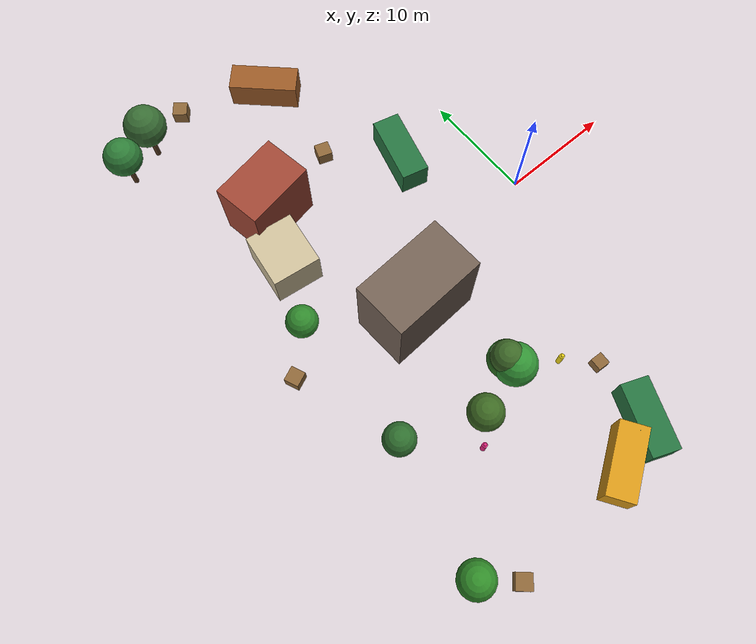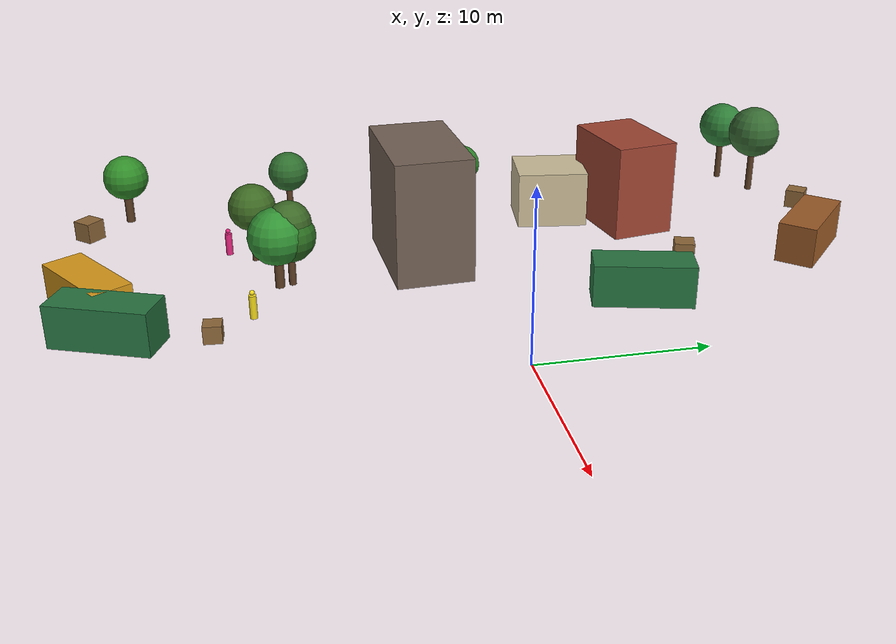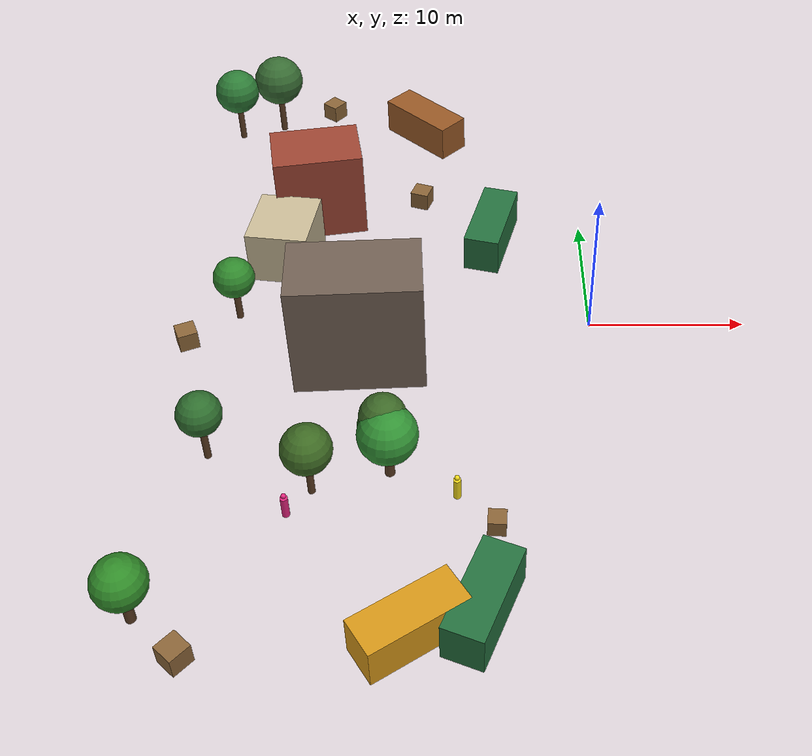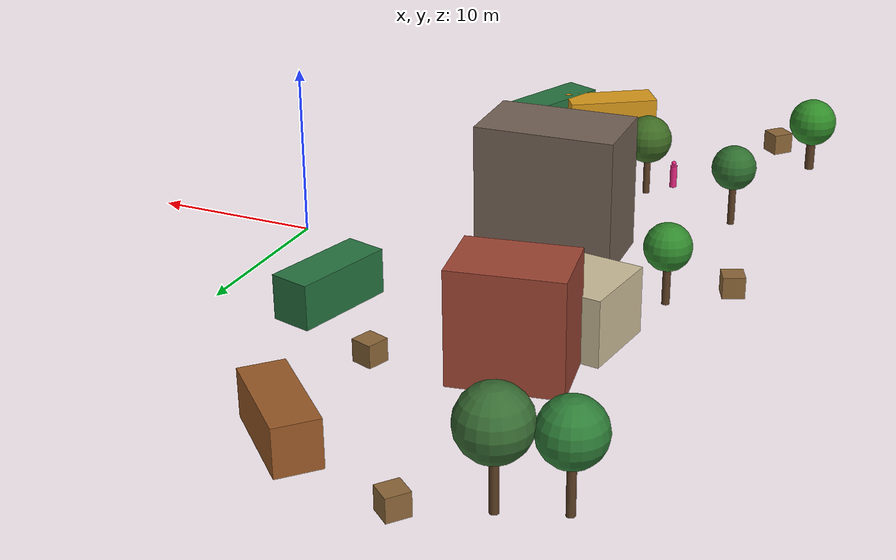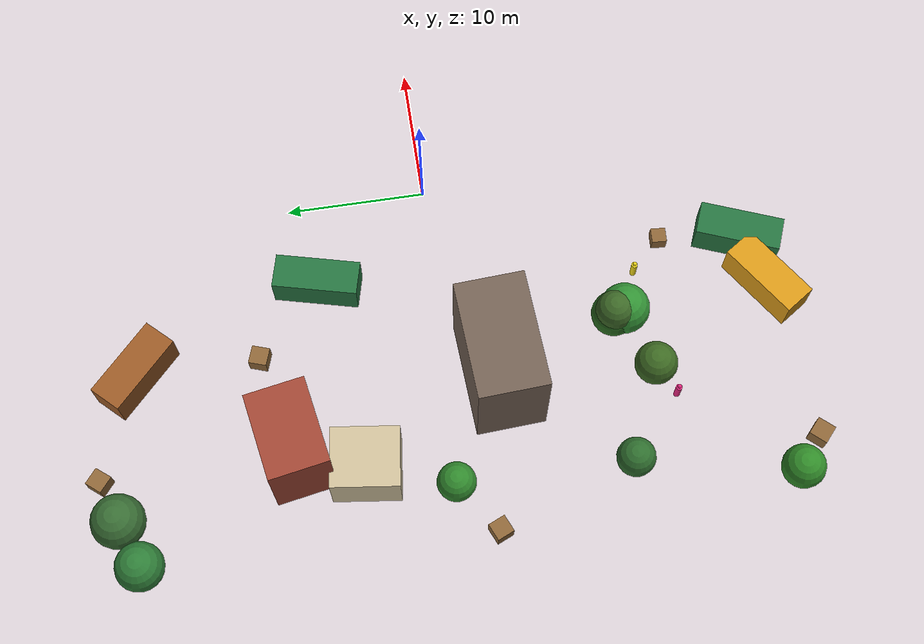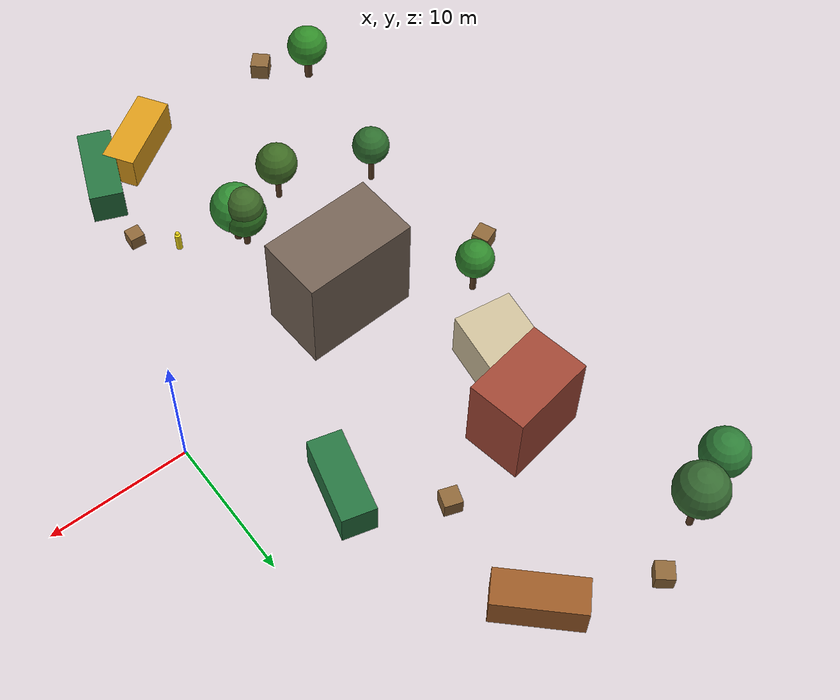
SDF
<sdf version="1.9">
 <world name="map_7">
  <model name="ground_plane">
   <static>true</static>
   <link name="link">
    <collision name="collision">
     <geometry><plane><normal>0 0 1</normal><size>1 1</size></plane></geometry>
    </collision>
   </link>
  </model>
  <model name="building_1">
   <static>true</static>
   <pose>-14.71 -3.30 3.95 0 0 0.053</pose>
   <link name="link">
    <collision name="collision"><geometry><box><size>8.19 4.88 7.89</size></box></geometry></collision>
    <visual name="visual">
     <geometry><box><size>8.19 4.88 7.89</size></box></geometry>
     <material>
      <diffuse>0.450 0.380 0.330 1</diffuse>
      <ambient>0.360 0.304 0.264 1</ambient>
      <specular>0.05 0.05 0.05 1</specular>
     </material>
    </visual>
   </link>
  </model>
  <model name="building_2">
   <static>true</static>
   <pose>-20.39 6.75 1.88 0 0 1.441</pose>
   <link name="link">
    <collision name="collision"><geometry><box><size>4.72 4.18 3.75</size></box></geometry></collision>
    <visual name="visual">
     <geometry><box><size>4.72 4.18 3.75</size></box></geometry>
     <material>
      <diffuse>0.800 0.740 0.600 1</diffuse>
      <ambient>0.640 0.592 0.480 1</ambient>
      <specular>0.05 0.05 0.05 1</specular>
     </material>
    </visual>
   </link>
  </model>
  <model name="building_4">
   <static>true</static>
   <pose>-18.46 11.52 3.16 0 0 1.743</pose>
   <link name="link">
    <collision name="collision"><geometry><box><size>4.22 6.09 6.31</size></box></geometry></collision>
    <visual name="visual">
     <geometry><box><size>4.22 6.09 6.31</size></box></geometry>
     <material>
      <diffuse>0.620 0.270 0.200 1</diffuse>
      <ambient>0.496 0.216 0.160 1</ambient>
      <specular>0.05 0.05 0.05 1</specular>
     </material>
    </visual>
   </link>
  </model>
  <model name="container_0">
   <static>true</static>
   <pose>-10.92 -23.24 1.30 0 0 0.579</pose>
   <link name="link">
    <collision name="collision"><geometry><box><size>6.00 2.40 2.60</size></box></geometry></collision>
    <visual name="visual">
     <geometry><box><size>6.00 2.40 2.60</size></box></geometry>
     <material>
      <diffuse>0.850 0.600 0.100 1</diffuse>
      <ambient>0.680 0.480 0.080 1</ambient>
      <specular>0.05 0.05 0.05 1</specular>
     </material>
    </visual>
   </link>
  </model>
  <model name="container_1">
   <static>true</static>
   <pose>-11.18 21.77 1.30 0 0 2.380</pose>
   <link name="link">
    <collision name="collision"><geometry><box><size>6.00 2.40 2.60</size></box></geometry></collision>
    <visual name="visual">
     <geometry><box><size>6.00 2.40 2.60</size></box></geometry>
     <material>
      <diffuse>0.600 0.350 0.150 1</diffuse>
      <ambient>0.480 0.280 0.120 1</ambient>
      <specular>0.05 0.05 0.05 1</specular>
     </material>
    </visual>
   </link>
  </model>
  <model name="container_3">
   <static>true</static>
   <pose>-7.16 -21.98 1.30 0 0 1.188</pose>
   <link name="link">
    <collision name="collision"><geometry><box><size>6.00 2.40 2.60</size></box></geometry></collision>
    <visual name="visual">
     <geometry><box><size>6.00 2.40 2.60</size></box></geometry>
     <material>
      <diffuse>0.150 0.450 0.250 1</diffuse>
      <ambient>0.120 0.360 0.200 1</ambient>
      <specular>0.05 0.05 0.05 1</specular>
     </material>
    </visual>
   </link>
  </model>
  <model name="container_4">
   <static>true</static>
   <pose>-6.30 8.47 1.30 0 0 1.319</pose>
   <link name="link">
    <collision name="collision"><geometry><box><size>6.00 2.40 2.60</size></box></geometry></collision>
    <visual name="visual">
     <geometry><box><size>6.00 2.40 2.60</size></box></geometry>
     <material>
      <diffuse>0.150 0.450 0.250 1</diffuse>
      <ambient>0.120 0.360 0.200 1</ambient>
      <specular>0.05 0.05 0.05 1</specular>
     </material>
    </visual>
   </link>
  </model>
  <model name="crate_2">
   <static>true</static>
   <pose>-22.60 -24.49 0.67 0 0 0.835</pose>
   <link name="link">
    <collision name="collision"><geometry><box><size>1.33 1.33 1.33</size></box></geometry></collision>
    <visual name="visual">
     <geometry><box><size>1.33 1.33 1.33</size></box></geometry>
     <material>
      <diffuse>0.550 0.400 0.220 1</diffuse>
      <ambient>0.440 0.320 0.176 1</ambient>
      <specular>0.05 0.05 0.05 1</specular>
     </material>
    </visual>
   </link>
  </model>
  <model name="crate_3">
   <static>true</static>
   <pose>-18.57 24.87 0.63 0 0 0.889</pose>
   <link name="link">
    <collision name="collision"><geometry><box><size>1.26 1.26 1.26</size></box></geometry></collision>
    <visual name="visual">
     <geometry><box><size>1.26 1.26 1.26</size></box></geometry>
     <material>
      <diffuse>0.550 0.400 0.220 1</diffuse>
      <ambient>0.440 0.320 0.176 1</ambient>
      <specular>0.05 0.05 0.05 1</specular>
     </material>
    </visual>
   </link>
  </model>
  <model name="crate_4">
   <static>true</static>
   <pose>-25.94 -1.60 0.63 0 0 1.975</pose>
   <link name="link">
    <collision name="collision"><geometry><box><size>1.26 1.26 1.26</size></box></geometry></collision>
    <visual name="visual">
     <geometry><box><size>1.26 1.26 1.26</size></box></geometry>
     <material>
      <diffuse>0.550 0.400 0.220 1</diffuse>
      <ambient>0.440 0.320 0.176 1</ambient>
      <specular>0.05 0.05 0.05 1</specular>
     </material>
    </visual>
   </link>
  </model>
  <model name="crate_5">
   <static>true</static>
   <pose>-11.27 13.18 0.63 0 0 1.243</pose>
   <link name="link">
    <collision name="collision"><geometry><box><size>1.27 1.27 1.27</size></box></geometry></collision>
    <visual name="visual">
     <geometry><box><size>1.27 1.27 1.27</size></box></geometry>
     <material>
      <diffuse>0.550 0.400 0.220 1</diffuse>
      <ambient>0.440 0.320 0.176 1</ambient>
      <specular>0.05 0.05 0.05 1</specular>
     </material>
    </visual>
   </link>
  </model>
  <model name="crate_8">
   <static>true</static>
   <pose>-6.35 -16.37 0.53 0 0 3.077</pose>
   <link name="link">
    <collision name="collision"><geometry><box><size>1.06 1.06 1.06</size></box></geometry></collision>
    <visual name="visual">
     <geometry><box><size>1.06 1.06 1.06</size></box></geometry>
     <material>
      <diffuse>0.550 0.400 0.220 1</diffuse>
      <ambient>0.440 0.320 0.176 1</ambient>
      <specular>0.05 0.05 0.05 1</specular>
     </material>
    </visual>
   </link>
  </model>
  <model name="tree_0">
   <static>true</static>
   <pose>-12.44 -12.42 0 0 0 0</pose>
   <link name="link">
    <collision name="trunk">
     <pose>0 0 1.04 0 0 0</pose>
     <geometry><cylinder><radius>0.29</radius><length>2.08</length></cylinder></geometry>
    </collision>
    <visual name="trunk">
     <pose>0 0 1.04 0 0 0</pose>
     <geometry><cylinder><radius>0.29</radius><length>2.08</length></cylinder></geometry>
     <material>
      <diffuse>0.360 0.240 0.140 1</diffuse>
      <ambient>0.288 0.192 0.112 1</ambient>
      <specular>0.05 0.05 0.05 1</specular>
     </material>
    </visual>
    <collision name="canopy">
     <pose>0 0 3.32 0 0 0</pose>
     <geometry><sphere><radius>1.77</radius></sphere></geometry>
    </collision>
    <visual name="canopy">
     <pose>0 0 3.32 0 0 0</pose>
     <geometry><sphere><radius>1.77</radius></sphere></geometry>
     <material>
      <diffuse>0.197 0.573 0.207 1</diffuse>
      <ambient>0.158 0.458 0.165 1</ambient>
      <specular>0.05 0.05 0.05 1</specular>
     </material>
    </visual>
   </link>
  </model>
  <model name="tree_2">
   <static>true</static>
   <pose>-25.60 21.99 0 0 0 0</pose>
   <link name="link">
    <collision name="trunk">
     <pose>0 0 1.49 0 0 0</pose>
     <geometry><cylinder><radius>0.22</radius><length>2.98</length></cylinder></geometry>
    </collision>
    <visual name="trunk">
     <pose>0 0 1.49 0 0 0</pose>
     <geometry><cylinder><radius>0.22</radius><length>2.98</length></cylinder></geometry>
     <material>
      <diffuse>0.360 0.240 0.140 1</diffuse>
      <ambient>0.288 0.192 0.112 1</ambient>
      <specular>0.05 0.05 0.05 1</specular>
     </material>
    </visual>
    <collision name="canopy">
     <pose>0 0 4.13 0 0 0</pose>
     <geometry><sphere><radius>1.64</radius></sphere></geometry>
    </collision>
    <visual name="canopy">
     <pose>0 0 4.13 0 0 0</pose>
     <geometry><sphere><radius>1.64</radius></sphere></geometry>
     <material>
      <diffuse>0.181 0.491 0.217 1</diffuse>
      <ambient>0.145 0.393 0.173 1</ambient>
      <specular>0.05 0.05 0.05 1</specular>
     </material>
    </visual>
   </link>
  </model>
  <model name="tree_3">
   <static>true</static>
   <pose>-12.65 -11.64 0 0 0 0</pose>
   <link name="link">
    <collision name="trunk">
     <pose>0 0 1.03 0 0 0</pose>
     <geometry><cylinder><radius>0.22</radius><length>2.05</length></cylinder></geometry>
    </collision>
    <visual name="trunk">
     <pose>0 0 1.03 0 0 0</pose>
     <geometry><cylinder><radius>0.22</radius><length>2.05</length></cylinder></geometry>
     <material>
      <diffuse>0.360 0.240 0.140 1</diffuse>
      <ambient>0.288 0.192 0.112 1</ambient>
      <specular>0.05 0.05 0.05 1</specular>
     </material>
    </visual>
    <collision name="canopy">
     <pose>0 0 3.16 0 0 0</pose>
     <geometry><sphere><radius>1.58</radius></sphere></geometry>
    </collision>
    <visual name="canopy">
     <pose>0 0 3.16 0 0 0</pose>
     <geometry><sphere><radius>1.58</radius></sphere></geometry>
     <material>
      <diffuse>0.171 0.431 0.128 1</diffuse>
      <ambient>0.137 0.345 0.103 1</ambient>
      <specular>0.05 0.05 0.05 1</specular>
     </material>
    </visual>
   </link>
  </model>
  <model name="tree_6">
   <static>true</static>
   <pose>-23.14 -11.09 0 0 0 0</pose>
   <link name="link">
    <collision name="trunk">
     <pose>0 0 1.35 0 0 0</pose>
     <geometry><cylinder><radius>0.21</radius><length>2.70</length></cylinder></geometry>
    </collision>
    <visual name="trunk">
     <pose>0 0 1.35 0 0 0</pose>
     <geometry><cylinder><radius>0.21</radius><length>2.70</length></cylinder></geometry>
     <material>
      <diffuse>0.360 0.240 0.140 1</diffuse>
      <ambient>0.288 0.192 0.112 1</ambient>
      <specular>0.05 0.05 0.05 1</specular>
     </material>
    </visual>
    <collision name="canopy">
     <pose>0 0 3.63 0 0 0</pose>
     <geometry><sphere><radius>1.34</radius></sphere></geometry>
    </collision>
    <visual name="canopy">
     <pose>0 0 3.63 0 0 0</pose>
     <geometry><sphere><radius>1.34</radius></sphere></geometry>
     <material>
      <diffuse>0.184 0.433 0.182 1</diffuse>
      <ambient>0.147 0.347 0.146 1</ambient>
      <specular>0.05 0.05 0.05 1</specular>
     </material>
    </visual>
   </link>
  </model>
  <model name="tree_7">
   <static>true</static>
   <pose>-25.35 -22.07 0 0 0 0</pose>
   <link name="link">
    <collision name="trunk">
     <pose>0 0 1.08 0 0 0</pose>
     <geometry><cylinder><radius>0.29</radius><length>2.16</length></cylinder></geometry>
    </collision>
    <visual name="trunk">
     <pose>0 0 1.08 0 0 0</pose>
     <geometry><cylinder><radius>0.29</radius><length>2.16</length></cylinder></geometry>
     <material>
      <diffuse>0.360 0.240 0.140 1</diffuse>
      <ambient>0.288 0.192 0.112 1</ambient>
      <specular>0.05 0.05 0.05 1</specular>
     </material>
    </visual>
    <collision name="canopy">
     <pose>0 0 3.21 0 0 0</pose>
     <geometry><sphere><radius>1.50</radius></sphere></geometry>
    </collision>
    <visual name="canopy">
     <pose>0 0 3.21 0 0 0</pose>
     <geometry><sphere><radius>1.50</radius></sphere></geometry>
     <material>
      <diffuse>0.191 0.547 0.160 1</diffuse>
      <ambient>0.153 0.437 0.128 1</ambient>
      <specular>0.05 0.05 0.05 1</specular>
     </material>
    </visual>
   </link>
  </model>
  <model name="tree_8">
   <static>true</static>
   <pose>-22.94 0.96 0 0 0 0</pose>
   <link name="link">
    <collision name="trunk">
     <pose>0 0 1.22 0 0 0</pose>
     <geometry><cylinder><radius>0.22</radius><length>2.45</length></cylinder></geometry>
    </collision>
    <visual name="trunk">
     <pose>0 0 1.22 0 0 0</pose>
     <geometry><cylinder><radius>0.22</radius><length>2.45</length></cylinder></geometry>
     <material>
      <diffuse>0.360 0.240 0.140 1</diffuse>
      <ambient>0.288 0.192 0.112 1</ambient>
      <specular>0.05 0.05 0.05 1</specular>
     </material>
    </visual>
    <collision name="canopy">
     <pose>0 0 3.38 0 0 0</pose>
     <geometry><sphere><radius>1.34</radius></sphere></geometry>
    </collision>
    <visual name="canopy">
     <pose>0 0 3.38 0 0 0</pose>
     <geometry><sphere><radius>1.34</radius></sphere></geometry>
     <material>
      <diffuse>0.190 0.537 0.176 1</diffuse>
      <ambient>0.152 0.430 0.141 1</ambient>
      <specular>0.05 0.05 0.05 1</specular>
     </material>
    </visual>
   </link>
  </model>
  <model name="tree_10">
   <static>true</static>
   <pose>-12.72 -11.67 0 0 0 0</pose>
   <link name="link">
    <collision name="trunk">
     <pose>0 0 1.51 0 0 0</pose>
     <geometry><cylinder><radius>0.20</radius><length>3.02</length></cylinder></geometry>
    </collision>
    <visual name="trunk">
     <pose>0 0 1.51 0 0 0</pose>
     <geometry><cylinder><radius>0.20</radius><length>3.02</length></cylinder></geometry>
     <material>
      <diffuse>0.360 0.240 0.140 1</diffuse>
      <ambient>0.288 0.192 0.112 1</ambient>
      <specular>0.05 0.05 0.05 1</specular>
     </material>
    </visual>
    <collision name="canopy">
     <pose>0 0 3.99 0 0 0</pose>
     <geometry><sphere><radius>1.38</radius></sphere></geometry>
    </collision>
    <visual name="canopy">
     <pose>0 0 3.99 0 0 0</pose>
     <geometry><sphere><radius>1.38</radius></sphere></geometry>
     <material>
      <diffuse>0.238 0.409 0.153 1</diffuse>
      <ambient>0.191 0.327 0.123 1</ambient>
      <specular>0.05 0.05 0.05 1</specular>
     </material>
    </visual>
   </link>
  </model>
  <model name="tree_11">
   <static>true</static>
   <pose>-16.83 -13.73 0 0 0 0</pose>
   <link name="link">
    <collision name="trunk">
     <pose>0 0 1.28 0 0 0</pose>
     <geometry><cylinder><radius>0.21</radius><length>2.56</length></cylinder></geometry>
    </collision>
    <visual name="trunk">
     <pose>0 0 1.28 0 0 0</pose>
     <geometry><cylinder><radius>0.21</radius><length>2.56</length></cylinder></geometry>
     <material>
      <diffuse>0.360 0.240 0.140 1</diffuse>
      <ambient>0.288 0.192 0.112 1</ambient>
      <specular>0.05 0.05 0.05 1</specular>
     </material>
    </visual>
    <collision name="canopy">
     <pose>0 0 3.61 0 0 0</pose>
     <geometry><sphere><radius>1.49</radius></sphere></geometry>
    </collision>
    <visual name="canopy">
     <pose>0 0 3.61 0 0 0</pose>
     <geometry><sphere><radius>1.49</radius></sphere></geometry>
     <material>
      <diffuse>0.240 0.414 0.137 1</diffuse>
      <ambient>0.192 0.331 0.110 1</ambient>
      <specular>0.05 0.05 0.05 1</specular>
     </material>
    </visual>
   </link>
  </model>
  <model name="tree_13">
   <static>true</static>
   <pose>-22.51 23.09 0 0 0 0</pose>
   <link name="link">
    <collision name="trunk">
     <pose>0 0 1.59 0 0 0</pose>
     <geometry><cylinder><radius>0.23</radius><length>3.18</length></cylinder></geometry>
    </collision>
    <visual name="trunk">
     <pose>0 0 1.59 0 0 0</pose>
     <geometry><cylinder><radius>0.23</radius><length>3.18</length></cylinder></geometry>
     <material>
      <diffuse>0.360 0.240 0.140 1</diffuse>
      <ambient>0.288 0.192 0.112 1</ambient>
      <specular>0.05 0.05 0.05 1</specular>
     </material>
    </visual>
    <collision name="canopy">
     <pose>0 0 4.45 0 0 0</pose>
     <geometry><sphere><radius>1.82</radius></sphere></geometry>
    </collision>
    <visual name="canopy">
     <pose>0 0 4.45 0 0 0</pose>
     <geometry><sphere><radius>1.82</radius></sphere></geometry>
     <material>
      <diffuse>0.218 0.423 0.201 1</diffuse>
      <ambient>0.174 0.339 0.161 1</ambient>
      <specular>0.05 0.05 0.05 1</specular>
     </material>
    </visual>
   </link>
  </model>
  <model name="entity_2">
   <static>true</static>
   <pose>-18.10 -15.37 0 0 0 0</pose>
   <link name="link">
    <visual name="body">
     <pose>0 0 0.72 0 0 0</pose>
     <geometry><cylinder><radius>0.22</radius><length>1.44</length></cylinder></geometry>
     <material>
      <diffuse>0.900 0.150 0.500 1</diffuse>
      <ambient>0.720 0.120 0.400 1</ambient>
      <specular>0.05 0.05 0.05 1</specular>
     </material>
    </visual>
    <visual name="head">
     <pose>0 0 1.6 0 0 0</pose>
     <geometry><sphere><radius>0.15</radius></sphere></geometry>
     <material>
      <diffuse>0.900 0.150 0.500 1</diffuse>
      <ambient>0.720 0.120 0.400 1</ambient>
      <specular>0.05 0.05 0.05 1</specular>
     </material>
    </visual>
   </link>
  </model>
  <model name="entity_3">
   <static>true</static>
   <pose>-8.56 -14.12 0 0 0 0</pose>
   <link name="link">
    <visual name="body">
     <pose>0 0 0.72 0 0 0</pose>
     <geometry><cylinder><radius>0.22</radius><length>1.44</length></cylinder></geometry>
     <material>
      <diffuse>0.950 0.850 0.100 1</diffuse>
      <ambient>0.760 0.680 0.080 1</ambient>
      <specular>0.05 0.05 0.05 1</specular>
     </material>
    </visual>
    <visual name="head">
     <pose>0 0 1.6 0 0 0</pose>
     <geometry><sphere><radius>0.15</radius></sphere></geometry>
     <material>
      <diffuse>0.950 0.850 0.100 1</diffuse>
      <ambient>0.760 0.680 0.080 1</ambient>
      <specular>0.05 0.05 0.05 1</specular>
     </material>
    </visual>
   </link>
  </model>
 </world>
</sdf>
